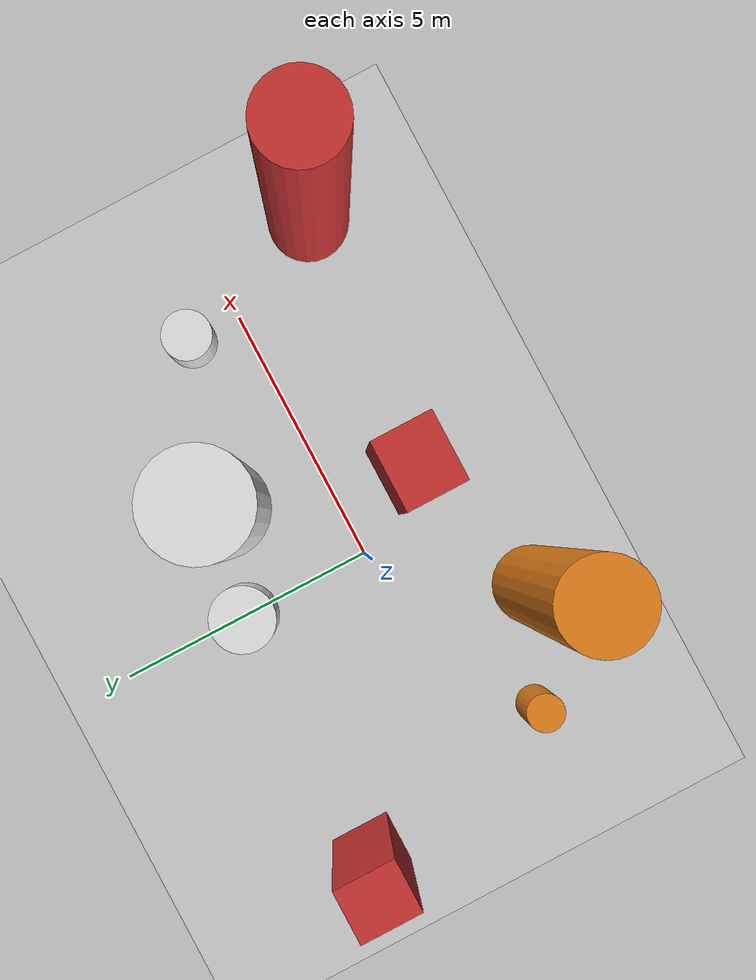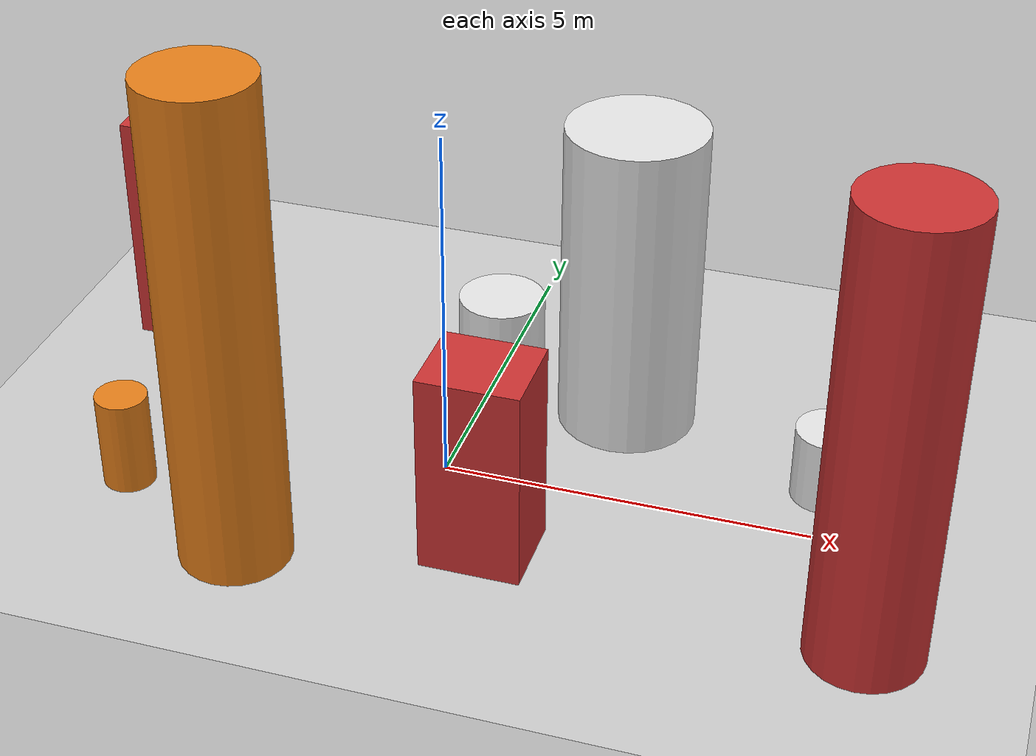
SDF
<?xml version='1.0'?>
<sdf version='1.6'>
  <world name='routeA_rl_v1__support_expansion__rl_train__mixed_3d_low_density_route__000131'>
    <!-- Sun light -->
    <light name='sun' type='directional'>
      <cast_shadows>1</cast_shadows>
      <pose>0 0 10 0 0 0</pose>
      <diffuse>0.8 0.8 0.8 1</diffuse>
      <specular>0.2 0.2 0.2 1</specular>
      <attenuation>
        <range>1000</range>
        <constant>0.9</constant>
        <linear>0.01</linear>
        <quadratic>0.001</quadratic>
      </attenuation>
      <direction>-0.5 0.1 -0.9</direction>
    </light>

    <!-- Ground plane -->
    <model name='ground_plane'>
      <static>1</static>
      <link name='link'>
        <collision name='collision'>
          <geometry>
            <plane>
              <normal>0 0 1</normal>
              <size>100 100</size>
            </plane>
          </geometry>
          <surface>
            <contact>
              <collide_bitmask>65535</collide_bitmask>
              <ode/>
            </contact>
            <friction>
              <ode>
                <mu>100</mu>
                <mu2>50</mu2>
              </ode>
              <torsional><ode/></torsional>
            </friction>
            <bounce/>
          </surface>
          <max_contacts>10</max_contacts>
        </collision>
        <visual name='visual'>
          <cast_shadows>0</cast_shadows>
          <geometry>
            <plane>
              <normal>0 0 1</normal>
              <size>100 100</size>
            </plane>
          </geometry>
          <material>
            <script>
              <uri>file://media/materials/scripts/gazebo.material</uri>
              <n>Gazebo/Grey</n>
            </script>
          </material>
        </visual>
      </link>
    </model>

    <!-- Environment -->
    <magnetic_field>6e-06 2.3e-05 -4.2e-05</magnetic_field>
    <atmosphere type='adiabatic'/>
    <physics name='default_physics' default='0' type='ode'>
      <gravity>0 0 -9.8</gravity>
      <max_step_size>0.004</max_step_size>
      <real_time_factor>1</real_time_factor>
      <real_time_update_rate>250</real_time_update_rate>
    </physics>
    <scene>
      <ambient>0.4 0.4 0.4 1</ambient>
      <background>0.7 0.7 0.7 1</background>
      <shadows>1</shadows>
    </scene>
    <wind/>
    <spherical_coordinates>
      <surface_model>EARTH_WGS84</surface_model>
      <latitude_deg>0</latitude_deg>
      <longitude_deg>0</longitude_deg>
      <elevation>0</elevation>
      <heading_deg>0</heading_deg>
    </spherical_coordinates>

    <!-- ============ OBSTACLES (8) ============ -->
    <model name='low_obs_0'>
      <static>1</static>
      <link name='link'>
        <visual name='visual'>
          <geometry>
            <cylinder>
              <radius>0.3531</radius>
              <length>1.3444</length>
            </cylinder>
          </geometry>
          <material>
            <script>
              <n>Gazebo/Orange</n>
              <uri>file://media/materials/scripts/gazebo.material</uri>
            </script>
            <ambient>0.9 0.5 0.1 1</ambient>
          </material>
        </visual>
        <collision name='collision'>
          <geometry>
            <cylinder>
              <radius>0.3531</radius>
              <length>1.3444</length>
            </cylinder>
          </geometry>
          <max_contacts>10</max_contacts>
          <surface>
            <contact><ode/></contact>
            <bounce/>
            <friction>
              <ode><mu>1</mu><mu2>1</mu2></ode>
              <torsional><ode/></torsional>
            </friction>
          </surface>
        </collision>
      </link>
      <pose>-4.0000 -1.5000 0.6722 0 0 0.0000</pose>
    </model>

    <model name='low_obs_1'>
      <static>1</static>
      <link name='link'>
        <visual name='visual'>
          <geometry>
            <cylinder>
              <radius>0.6164</radius>
              <length>1.2820</length>
            </cylinder>
          </geometry>
          <material>
            <script>
              <n>Gazebo/White</n>
              <uri>file://media/materials/scripts/gazebo.material</uri>
            </script>
            <ambient>0.9 0.9 0.9 1</ambient>
          </material>
        </visual>
        <collision name='collision'>
          <geometry>
            <cylinder>
              <radius>0.6164</radius>
              <length>1.2820</length>
            </cylinder>
          </geometry>
          <max_contacts>10</max_contacts>
          <surface>
            <contact><ode/></contact>
            <bounce/>
            <friction>
              <ode><mu>1</mu><mu2>1</mu2></ode>
              <torsional><ode/></torsional>
            </friction>
          </surface>
        </collision>
      </link>
      <pose>0.0000 2.5000 0.6410 0 0 0.0000</pose>
    </model>

    <model name='low_obs_2'>
      <static>1</static>
      <link name='link'>
        <visual name='visual'>
          <geometry>
            <cylinder>
              <radius>0.4714</radius>
              <length>1.0436</length>
            </cylinder>
          </geometry>
          <material>
            <script>
              <n>Gazebo/White</n>
              <uri>file://media/materials/scripts/gazebo.material</uri>
            </script>
            <ambient>0.9 0.9 0.9 1</ambient>
          </material>
        </visual>
        <collision name='collision'>
          <geometry>
            <cylinder>
              <radius>0.4714</radius>
              <length>1.0436</length>
            </cylinder>
          </geometry>
          <max_contacts>10</max_contacts>
          <surface>
            <contact><ode/></contact>
            <bounce/>
            <friction>
              <ode><mu>1</mu><mu2>1</mu2></ode>
              <torsional><ode/></torsional>
            </friction>
          </surface>
        </collision>
      </link>
      <pose>5.0000 1.0000 0.5218 0 0 0.0000</pose>
    </model>

    <model name='tall_obs_0'>
      <static>1</static>
      <link name='link'>
        <visual name='visual'>
          <geometry>
            <cylinder>
              <radius>0.7439</radius>
              <length>6.7035</length>
            </cylinder>
          </geometry>
          <material>
            <script>
              <n>Gazebo/Orange</n>
              <uri>file://media/materials/scripts/gazebo.material</uri>
            </script>
            <ambient>0.9 0.5 0.1 1</ambient>
          </material>
        </visual>
        <collision name='collision'>
          <geometry>
            <cylinder>
              <radius>0.7439</radius>
              <length>6.7035</length>
            </cylinder>
          </geometry>
          <max_contacts>10</max_contacts>
          <surface>
            <contact><ode/></contact>
            <bounce/>
            <friction>
              <ode><mu>1</mu><mu2>1</mu2></ode>
              <torsional><ode/></torsional>
            </friction>
          </surface>
        </collision>
      </link>
      <pose>-2.0000 -2.5000 3.3518 0 0 0.0000</pose>
    </model>

    <model name='tall_obs_1'>
      <static>1</static>
      <link name='link'>
        <visual name='visual'>
          <geometry>
            <cylinder>
              <radius>0.9647</radius>
              <length>4.5009</length>
            </cylinder>
          </geometry>
          <material>
            <script>
              <n>Gazebo/White</n>
              <uri>file://media/materials/scripts/gazebo.material</uri>
            </script>
            <ambient>0.9 0.9 0.9 1</ambient>
          </material>
        </visual>
        <collision name='collision'>
          <geometry>
            <cylinder>
              <radius>0.9647</radius>
              <length>4.5009</length>
            </cylinder>
          </geometry>
          <max_contacts>10</max_contacts>
          <surface>
            <contact><ode/></contact>
            <bounce/>
            <friction>
              <ode><mu>1</mu><mu2>1</mu2></ode>
              <torsional><ode/></torsional>
            </friction>
          </surface>
        </collision>
      </link>
      <pose>2.0000 2.0000 2.2504 0 0 0.0000</pose>
    </model>

    <model name='tall_obs_2'>
      <static>1</static>
      <link name='link'>
        <visual name='visual'>
          <geometry>
            <cylinder>
              <radius>0.7590</radius>
              <length>6.2218</length>
            </cylinder>
          </geometry>
          <material>
            <script>
              <n>Gazebo/Red</n>
              <uri>file://media/materials/scripts/gazebo.material</uri>
            </script>
            <ambient>0.8 0.2 0.2 1</ambient>
          </material>
        </visual>
        <collision name='collision'>
          <geometry>
            <cylinder>
              <radius>0.7590</radius>
              <length>6.2218</length>
            </cylinder>
          </geometry>
          <max_contacts>10</max_contacts>
          <surface>
            <contact><ode/></contact>
            <bounce/>
            <friction>
              <ode><mu>1</mu><mu2>1</mu2></ode>
              <torsional><ode/></torsional>
            </friction>
          </surface>
        </collision>
      </link>
      <pose>6.0000 -2.0000 3.1109 0 0 0.0000</pose>
    </model>

    <model name='med_obs_0'>
      <static>1</static>
      <link name='link'>
        <visual name='visual'>
          <geometry>
            <box>
              <size>0.9916 1.1489 3.4161</size>
            </box>
          </geometry>
          <material>
            <script>
              <n>Gazebo/Red</n>
              <uri>file://media/materials/scripts/gazebo.material</uri>
            </script>
            <ambient>0.8 0.2 0.2 1</ambient>
          </material>
        </visual>
        <collision name='collision'>
          <geometry>
            <box>
              <size>0.9916 1.1489 3.4161</size>
            </box>
          </geometry>
          <max_contacts>10</max_contacts>
          <surface>
            <contact><ode/></contact>
            <bounce/>
            <friction>
              <ode><mu>1</mu><mu2>1</mu2></ode>
              <torsional><ode/></torsional>
            </friction>
          </surface>
        </collision>
      </link>
      <pose>-5.0000 2.5000 1.7080 0 0 0.0000</pose>
    </model>

    <model name='med_obs_1'>
      <static>1</static>
      <link name='link'>
        <visual name='visual'>
          <geometry>
            <box>
              <size>1.3449 1.1746 2.8157</size>
            </box>
          </geometry>
          <material>
            <script>
              <n>Gazebo/Red</n>
              <uri>file://media/materials/scripts/gazebo.material</uri>
            </script>
            <ambient>0.8 0.2 0.2 1</ambient>
          </material>
        </visual>
        <collision name='collision'>
          <geometry>
            <box>
              <size>1.3449 1.1746 2.8157</size>
            </box>
          </geometry>
          <max_contacts>10</max_contacts>
          <surface>
            <contact><ode/></contact>
            <bounce/>
            <friction>
              <ode><mu>1</mu><mu2>1</mu2></ode>
              <torsional><ode/></torsional>
            </friction>
          </surface>
        </collision>
      </link>
      <pose>1.0000 -1.5000 1.4078 0 0 0.0000</pose>
    </model>

    <!-- GUI camera -->
    <gui fullscreen='0'>
      <camera name='user_camera'>
        <pose>-15 0 18 0 0.85 0.15</pose>
        <view_controller>orbit</view_controller>
        <projection_type>perspective</projection_type>
      </camera>
    </gui>
  </world>
</sdf>
